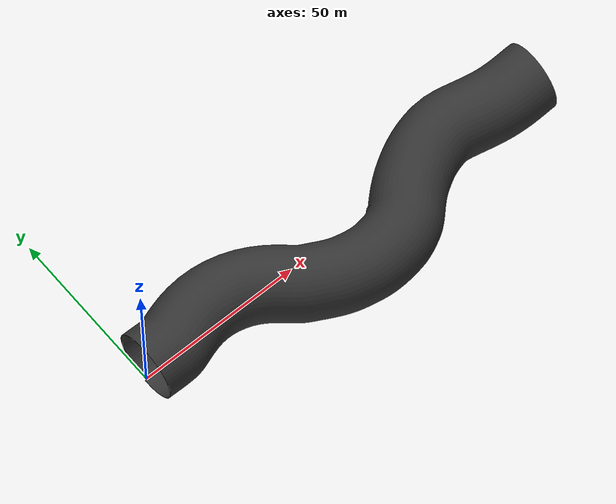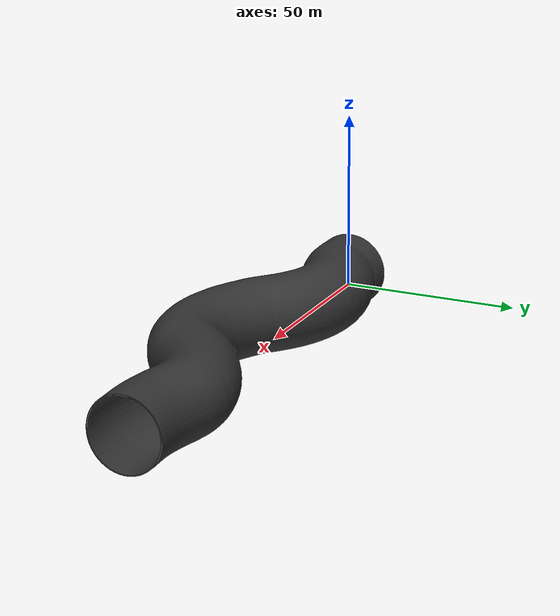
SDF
<?xml version="1.0"?>
<sdf version="1.8">
  <world name="STunnel">
    <plugin filename="libgz-sim-physics-system.so"
            name="gz::sim::systems::Physics"/>
    <plugin filename="libgz-sim-user-commands-system.so"
            name="gz::sim::systems::UserCommands"/>
    <plugin filename="libgz-sim-scene-broadcaster-system.so"
            name="gz::sim::systems::SceneBroadcaster"/>
    <plugin filename="libgz-sim-sensors-system.so"
            name="gz::sim::systems::Sensors">
      <render_engine>ogre2</render_engine>
    </plugin>
   <include>
      <uri>model://STunnel</uri>
      <pose>55 -12.5 5 0 0 0</pose>
   </include>

  </world>
</sdf>

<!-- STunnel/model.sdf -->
<sdf version="1.8">
  <model name="STunnel">
    <static>true</static>

    <link name="tunnel">

      <!-- Collision -->
      <collision name="collision">
        <geometry>
          <mesh>
            <uri>meshes/STunnel.stl</uri>
          </mesh>
        </geometry>
      </collision>

      <!-- Visual -->
      <visual name="visual">
        <geometry>
          <mesh>
            <uri>meshes/STunnel.stl</uri>
          </mesh>
        </geometry>
        <material>
            <ambient>0.2 0.2 0.2 1</ambient>
            <diffuse>0.2 0.2 0.2 1</diffuse>
        </material>
      </visual>

    </link>
  </model>
</sdf>
